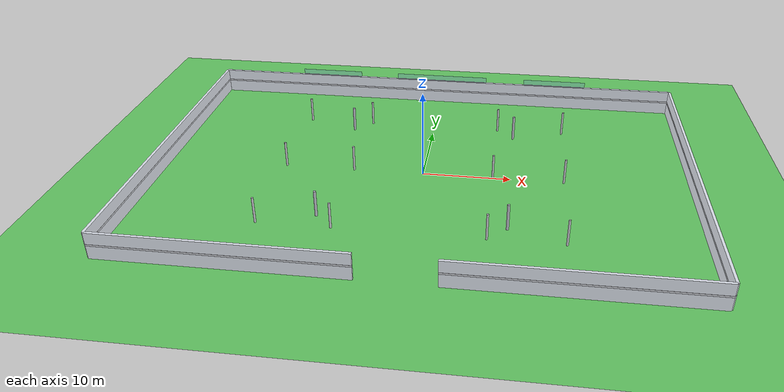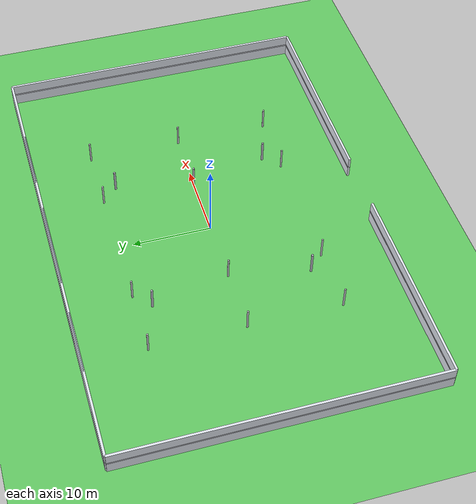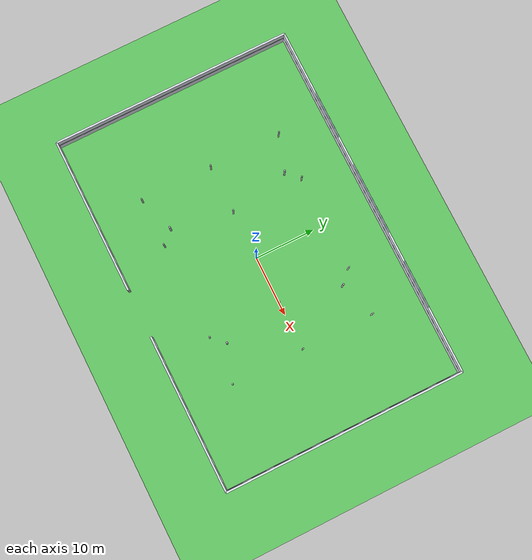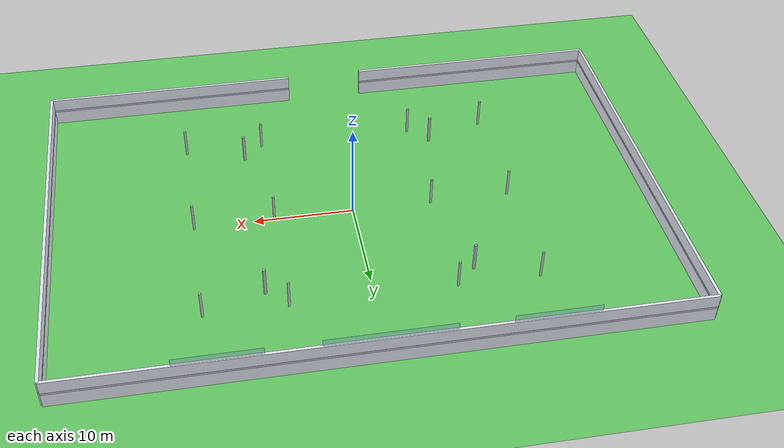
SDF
<?xml version="1.0"?>
<sdf version="1.7">
  <world name="empty">

    <!-- ===== Core systems (เหมือนเดิม) ===== -->
    <plugin filename="gz-sim-physics-system" name="gz::sim::systems::Physics"/>
    <plugin filename="gz-sim-user-commands-system" name="gz::sim::systems::UserCommands"/>
    <plugin filename="gz-sim-scene-broadcaster-system" name="gz::sim::systems::SceneBroadcaster"/>
    <plugin filename="gz-sim-sensors-system" name="gz::sim::systems::Sensors">
      <render_engine>ogre2</render_engine>
    </plugin>
    <plugin filename="gz-sim-imu-system" name="gz::sim::systems::Imu"/>

    <!-- ===== Scene tone: สีพื้นหลัง/แสงเงา ===== -->
    <scene>
      <ambient>0.55 0.55 0.58 1</ambient>
      <background>0.82 0.85 0.90 1</background>
      <shadows>true</shadows>
    </scene>

    <!-- ☀️ Sunlight (เงาสวยขึ้นเล็กน้อย) -->
    <light name="sun" type="directional">
      <pose>0 0 60 0 0 0</pose>
      <diffuse>1 1 0.95 1</diffuse>
      <specular>0.4 0.4 0.4 1</specular>
      <direction>-0.35 0.2 -0.9</direction>
      <cast_shadows>true</cast_shadows>
      <attenuation>
        <range>3000</range>
        <constant>0.9</constant>
        <linear>0.01</linear>
        <quadratic>0.001</quadratic>
      </attenuation>
    </light>

    <!-- 🔆 สปอตไลต์เพดาน (เพิ่มมิติแต่ไม่แยงตา) -->
    <light name="ceiling_spot_center" type="spot">
      <pose>0 0 7 0 1.2 0</pose>
      <diffuse>1 1 1 1</diffuse>
      <specular>0.2 0.2 0.2 1</specular>
      <cast_shadows>true</cast_shadows>
      <attenuation><range>80</range><constant>0.9</constant><linear>0.02</linear><quadratic>0.002</quadratic></attenuation>
      <spot><inner_angle>0.6</inner_angle><outer_angle>1.0</outer_angle><falloff>0.6</falloff></spot>
    </light>

    <!-- 🌍 Ground Plane (ใหญ่ขึ้น + โทนสนาม) -->
    <model name="ground_plane">
      <static>true</static>
      <link name="link">
        <collision name="collision">
          <geometry><plane><normal>0 0 1</normal><size>200 200</size></plane></geometry>
          <surface><friction><ode><mu>1.0</mu><mu2>1.0</mu2></ode></friction></surface>
        </collision>
        <visual name="visual">
          <geometry><plane><normal>0 0 1</normal><size>200 200</size></plane></geometry>
          <material>
            <ambient>0.30 0.60 0.30 1</ambient>
            <diffuse>0.40 0.80 0.40 1</diffuse>
            <specular>0.10 0.10 0.10 1</specular>
          </material>
        </visual>

        <!-- เส้นไกด์แนวยาว (visual-only ไม่มี collision) -->
        <visual name="guide_long">
          <pose>0 0 0.02 0 0 0</pose>
          <geometry><box><size>200 0.10 0.01</size></box></geometry>
          <material><diffuse>1.0 1.0 1.0 0.9</diffuse></material>
        </visual>
        <!-- เส้นไกด์แนวขวาง -->
        <visual name="guide_cross">
          <pose>0 0 0.02 0 0 1.5708</pose>
          <geometry><box><size>200 0.10 0.01</size></box></geometry>
          <material><diffuse>1.0 1.0 1.0 0.9</diffuse></material>
        </visual>
        <!-- แท่นสตาร์ท (visual-only) -->
        <visual name="start_pad">
          <pose>0 -5 0.02 0 0 0</pose>
          <geometry><box><size>6 3 0.01</size></box></geometry>
          <material><diffuse>0.2 0.2 0.2 0.9</diffuse></material>
        </visual>
      </link>
    </model>

    <!-- ========== Walls: ขยายเป็น 60x40 m, สูง 3 m ========== -->
    <!-- North wall + windows (windows เป็น visual-only ไม่ชน) -->
    <model name="wall_north">
      <static>true</static>
      <pose>0 20 1.5 0 0 0</pose>
      <link name="link">
        <collision name="col"><geometry><box><size>60 0.30 3.0</size></box></geometry></collision>
        <visual name="vis"><geometry><box><size>60 0.30 3.0</size></box></geometry>
          <material><diffuse>0.90 0.92 0.96 1</diffuse></material></visual>
        <!-- windows -->
        <visual name="win_l"><pose>-15 0 1.6 0 0 0</pose>
          <geometry><box><size>8 0.05 1.2</size></box></geometry>
          <material><ambient>0.6 0.8 1.0 0.35</ambient><diffuse>0.6 0.8 1.0 0.35</diffuse><specular>0.9 0.9 0.9 0.35</specular></material>
          <transparency>0.65</transparency>
        </visual>
        <visual name="win_c"><pose>0 0 1.6 0 0 0</pose>
          <geometry><box><size>12 0.05 1.2</size></box></geometry>
          <material><ambient>0.6 0.8 1.0 0.35</ambient><diffuse>0.6 0.8 1.0 0.35</diffuse><specular>0.9 0.9 0.9 0.35</specular></material>
          <transparency>0.65</transparency>
        </visual>
        <visual name="win_r"><pose>15 0 1.6 0 0 0</pose>
          <geometry><box><size>8 0.05 1.2</size></box></geometry>
          <material><ambient>0.6 0.8 1.0 0.35</ambient><diffuse>0.6 0.8 1.0 0.35</diffuse><specular>0.9 0.9 0.9 0.35</specular></material>
          <transparency>0.65</transparency>
        </visual>
        <!-- บัวผนัง -->
        <visual name="north_base"><pose>0 0 0.10 0 0 0</pose>
          <geometry><box><size>60 0.32 0.20</size></box></geometry>
          <material><diffuse>0.82 0.83 0.86 1</diffuse></material>
        </visual>
      </link>
    </model>

    <!-- South wall แบ่งสองท่อนเว้น “ประตู” 4 m -->
    <model name="wall_south_left">
      <static>true</static>
      <pose>-17 -20 1.5 0 0 0</pose>
      <link name="link">
        <collision name="col"><geometry><box><size>26 0.30 3.0</size></box></geometry></collision>
        <visual name="vis"><geometry><box><size>26 0.30 3.0</size></box></geometry>
          <material><diffuse>0.90 0.92 0.96 1</diffuse></material></visual>
        <visual name="south_base_l"><pose>0 0 0.10 0 0 0</pose>
          <geometry><box><size>26 0.32 0.20</size></box></geometry>
          <material><diffuse>0.82 0.83 0.86 1</diffuse></material>
        </visual>
      </link>
    </model>
    <model name="wall_south_right">
      <static>true</static>
      <pose>17 -20 1.5 0 0 0</pose>
      <link name="link">
        <collision name="col"><geometry><box><size>26 0.30 3.0</size></box></geometry></collision>
        <visual name="vis"><geometry><box><size>26 0.30 3.0</size></box></geometry>
          <material><diffuse>0.90 0.92 0.96 1</diffuse></material></visual>
        <visual name="south_base_r"><pose>0 0 0.10 0 0 0</pose>
          <geometry><box><size>26 0.32 0.20</size></box></geometry>
          <material><diffuse>0.82 0.83 0.86 1</diffuse></material>
        </visual>
      </link>
    </model>

    <!-- East / West walls -->
    <model name="wall_east">
      <static>true</static>
      <pose>30 0 1.5 0 0 0</pose>
      <link name="link">
        <collision name="col"><geometry><box><size>0.30 40 3.0</size></box></geometry></collision>
        <visual name="vis"><geometry><box><size>0.30 40 3.0</size></box></geometry>
          <material><diffuse>0.90 0.92 0.96 1</diffuse></material></visual>
        <visual name="east_base"><pose>0 0 0.10 0 0 0</pose>
          <geometry><box><size>0.32 40 0.20</size></box></geometry>
          <material><diffuse>0.82 0.83 0.86 1</diffuse></material>
        </visual>
      </link>
    </model>

    <model name="wall_west">
      <static>true</static>
      <pose>-30 0 1.5 0 0 0</pose>
      <link name="link">
        <collision name="col"><geometry><box><size>0.30 40 3.0</size></box></geometry></collision>
        <visual name="vis"><geometry><box><size>0.30 40 3.0</size></box></geometry>
          <material><diffuse>0.90 0.92 0.96 1</diffuse></material></visual>
        <visual name="west_base"><pose>0 0 0.10 0 0 0</pose>
          <geometry><box><size>0.32 40 0.20</size></box></geometry>
          <material><diffuse>0.82 0.83 0.86 1</diffuse></material>
        </visual>
      </link>
    </model>

    <!-- ========== Pillars ========== -->
    <!-- 4 ต้นเดิม (ขยับตามสเกลใหม่) -->
    <model name="pillar_ne"><static>true</static><pose> 10  10 1.5 0 0 0</pose>
      <link name="link"><collision name="c"><geometry><cylinder><radius>0.15</radius><length>3.0</length></cylinder></geometry></collision>
        <visual name="v"><geometry><cylinder><radius>0.15</radius><length>3.0</length></cylinder></geometry>
          <material><diffuse>0.70 0.70 0.75 1</diffuse></material></visual></link>
    </model>
    <model name="pillar_nw"><static>true</static><pose>-10  10 1.5 0 0 0</pose>
      <link name="link"><collision name="c"><geometry><cylinder><radius>0.15</radius><length>3.0</length></cylinder></geometry></collision>
        <visual name="v"><geometry><cylinder><radius>0.15</radius><length>3.0</length></cylinder></geometry>
          <material><diffuse>0.70 0.70 0.75 1</diffuse></material></visual></link>
    </model>
    <model name="pillar_se"><static>true</static><pose> 10 -10 1.5 0 0 0</pose>
      <link name="link"><collision name="c"><geometry><cylinder><radius>0.15</radius><length>3.0</length></cylinder></geometry></collision>
        <visual name="v"><geometry><cylinder><radius>0.15</radius><length>3.0</length></cylinder></geometry>
          <material><diffuse>0.70 0.70 0.75 1</diffuse></material></visual></link>
    </model>
    <model name="pillar_sw"><static>true</static><pose>-10 -10 1.5 0 0 0</pose>
      <link name="link"><collision name="c"><geometry><cylinder><radius>0.15</radius><length>3.0</length></cylinder></geometry></collision>
        <visual name="v"><geometry><cylinder><radius>0.15</radius><length>3.0</length></cylinder></geometry>
          <material><diffuse>0.70 0.70 0.75 1</diffuse></material></visual></link>
    </model>

    <!-- กริดเสา 12 ต้น (x∈{-16,-8,8,16}, y∈{-12,0,12}) -->
    <model name="pillar_x-16_y12"><static>true</static><pose>-16 12 1.5 0 0 0</pose>
      <link name="link"><collision name="c"><geometry><cylinder><radius>0.12</radius><length>3.0</length></cylinder></geometry></collision>
        <visual name="v"><geometry><cylinder><radius>0.12</radius><length>3.0</length></cylinder></geometry>
          <material><diffuse>0.75 0.75 0.78 1</diffuse></material></visual></link>
    </model>
    <model name="pillar_x-8_y12"><static>true</static><pose>-8 12 1.5 0 0 0</pose>
      <link name="link"><collision name="c"><geometry><cylinder><radius>0.12</radius><length>3.0</length></cylinder></geometry></collision>
        <visual name="v"><geometry><cylinder><radius>0.12</radius><length>3.0</length></cylinder></geometry>
          <material><diffuse>0.75 0.75 0.78 1</diffuse></material></visual></link>
    </model>
    <model name="pillar_x8_y12"><static>true</static><pose>8 12 1.5 0 0 0</pose>
      <link name="link"><collision name="c"><geometry><cylinder><radius>0.12</radius><length>3.0</length></cylinder></geometry></collision>
        <visual name="v"><geometry><cylinder><radius>0.12</radius><length>3.0</length></cylinder></geometry>
          <material><diffuse>0.75 0.75 0.78 1</diffuse></material></visual></link>
    </model>
    <model name="pillar_x16_y12"><static>true</static><pose>16 12 1.5 0 0 0</pose>
      <link name="link"><collision name="c"><geometry><cylinder><radius>0.12</radius><length>3.0</length></cylinder></geometry></collision>
        <visual name="v"><geometry><cylinder><radius>0.12</radius><length>3.0</length></cylinder></geometry>
          <material><diffuse>0.75 0.75 0.78 1</diffuse></material></visual></link>
    </model>
    <model name="pillar_x-16_y0"><static>true</static><pose>-16 0 1.5 0 0 0</pose>
      <link name="link"><collision name="c"><geometry><cylinder><radius>0.12</radius><length>3.0</length></cylinder></geometry></collision>
        <visual name="v"><geometry><cylinder><radius>0.12</radius><length>3.0</length></cylinder></geometry>
          <material><diffuse>0.75 0.75 0.78 1</diffuse></material></visual></link>
    </model>
    <model name="pillar_x-8_y0"><static>true</static><pose>-8 0 1.5 0 0 0</pose>
      <link name="link"><collision name="c"><geometry><cylinder><radius>0.12</radius><length>3.0</length></cylinder></geometry></collision>
        <visual name="v"><geometry><cylinder><radius>0.12</radius><length>3.0</length></cylinder></geometry>
          <material><diffuse>0.75 0.75 0.78 1</diffuse></material></visual></link>
    </model>
    <model name="pillar_x8_y0"><static>true</static><pose>8 0 1.5 0 0 0</pose>
      <link name="link"><collision name="c"><geometry><cylinder><radius>0.12</radius><length>3.0</length></cylinder></geometry></collision>
        <visual name="v"><geometry><cylinder><radius>0.12</radius><length>3.0</length></cylinder></geometry>
          <material><diffuse>0.75 0.75 0.78 1</diffuse></material></visual></link>
    </model>
    <model name="pillar_x16_y0"><static>true</static><pose>16 0 1.5 0 0 0</pose>
      <link name="link"><collision name="c"><geometry><cylinder><radius>0.12</radius><length>3.0</length></cylinder></geometry></collision>
        <visual name="v"><geometry><cylinder><radius>0.12</radius><length>3.0</length></cylinder></geometry>
          <material><diffuse>0.75 0.75 0.78 1</diffuse></material></visual></link>
    </model>
    <model name="pillar_x-16_y-12"><static>true</static><pose>-16 -12 1.5 0 0 0</pose>
      <link name="link"><collision name="c"><geometry><cylinder><radius>0.12</radius><length>3.0</length></cylinder></geometry></collision>
        <visual name="v"><geometry><cylinder><radius>0.12</radius><length>3.0</length></cylinder></geometry>
          <material><diffuse>0.75 0.75 0.78 1</diffuse></material></visual></link>
    </model>
    <model name="pillar_x-8_y-12"><static>true</static><pose>-8 -12 1.5 0 0 0</pose>
      <link name="link"><collision name="c"><geometry><cylinder><radius>0.12</radius><length>3.0</length></cylinder></geometry></collision>
        <visual name="v"><geometry><cylinder><radius>0.12</radius><length>3.0</length></cylinder></geometry>
          <material><diffuse>0.75 0.75 0.78 1</diffuse></material></visual></link>
    </model>
    <model name="pillar_x8_y-12"><static>true</static><pose>8 -12 1.5 0 0 0</pose>
      <link name="link"><collision name="c"><geometry><cylinder><radius>0.12</radius><length>3.0</length></cylinder></geometry></collision>
        <visual name="v"><geometry><cylinder><radius>0.12</radius><length>3.0</length></cylinder></geometry>
          <material><diffuse>0.75 0.75 0.78 1</diffuse></material></visual></link>
    </model>
    <model name="pillar_x16_y-12"><static>true</static><pose>16 -12 1.5 0 0 0</pose>
      <link name="link"><collision name="c"><geometry><cylinder><radius>0.12</radius><length>3.0</length></cylinder></geometry></collision>
        <visual name="v"><geometry><cylinder><radius>0.12</radius><length>3.0</length></cylinder></geometry>
          <material><diffuse>0.75 0.75 0.78 1</diffuse></material></visual></link>
    </model>

    <!-- 🎥 GUI camera -->
    <gui>
      <camera name="user_camera">
        <pose>0 -55 22 0.70 0 0</pose>
      </camera>
    </gui>

  </world>
</sdf>
